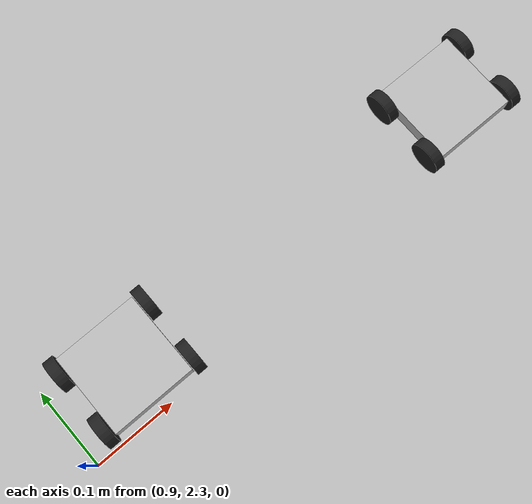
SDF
<sdf version="1.7">
 <world name="grid3">
  <model name="stage2">
   <link name="ridges">
    <pose>0 0 0 0 0 -1.57</pose>
    <inertial>
     <mass>10</mass>
     <inertia><ixx>0.83</ixx><ixy>-0</ixy><ixz>-0</ixz><iyy>0.83</iyy><iyz>-0</iyz><izz>0.83</izz></inertia>
    </inertial>
    <collision name="stage">
     <geometry><box><size>4.8768 4.8768 0.1</size></box></geometry>
     <surface><friction><ode><mu>1</mu><mu2>1</mu2></ode></friction></surface>
    </collision>
    <visual name="stage">
     <geometry><box><size>4.8768 4.8768 0.1</size></box></geometry>
     <material>
      <script>
       <uri>model://planeStage2/materials/scripts/</uri>
       <uri>model://planeStage2/materials/textures/</uri>
       <name>planeStage2/Image</name>
      </script>
     </material>
    </visual>
   </link>
   <static>1</static>
   <pose>1.2192 1.2192 -0.045 0 -0 1.5708</pose>
  </model>
  <model name="myrobot3">
   <link name="chassis3">
    <inertial>
     <pose>0 0 0.1 0 -0 0</pose>
     <mass>10</mass>
     <inertia><ixx>0.5</ixx><ixy>0</ixy><ixz>0</ixz><iyy>1</iyy><iyz>0</iyz><izz>0.1</izz></inertia>
    </inertial>
    <collision name="chassis3_fixed_joint_lump__collision_collision">
     <geometry><box><size>0.1016 0.1016 0.02</size></box></geometry>
    </collision>
    <visual name="chassis3_visual_visual">
     <geometry><box><size>0.1016 0.1016 0.02</size></box></geometry>
     <material>
      <script><name>robot3/Image</name><uri>file://media/materials/scripts/gazebo.material</uri></script>
     </material>
    </visual>
   </link>
   <joint name="left_back_wheel_hinge" type="revolute">
    <pose relative_to="chassis3">-0.0381 0.0584 0 0 -0 0</pose>
    <parent>chassis3</parent>
    <child>left_back_wheel</child>
    <axis>
     <xyz>0 1 0</xyz>
     <limit><lower>-1e+16</lower><upper>1e+16</upper></limit>
     <dynamics><spring_reference>0</spring_reference><spring_stiffness>0</spring_stiffness></dynamics>
    </axis>
   </joint>
   <link name="left_back_wheel">
    <pose relative_to="left_back_wheel_hinge">0 0 0 0 -0 0</pose>
    <inertial>
     <pose>0 0 0 -0 1.5707 1.5707</pose>
     <mass>5</mass>
     <inertia><ixx>1</ixx><ixy>0</ixy><ixz>0</ixz><iyy>1</iyy><iyz>0</iyz><izz>1</izz></inertia>
    </inertial>
    <collision name="left_back_wheel_fixed_joint_lump__collision_collision">
     <pose>0 0 0 1.57089 1.57079 -3.14159</pose>
     <geometry><cylinder><length>0.0127</length><radius>0.02</radius></cylinder></geometry>
    </collision>
    <visual name="left_back_wheel_visual_visual">
     <pose>0 0 0 1.57089 1.57079 -3.14159</pose>
     <geometry><cylinder><length>0.0127</length><radius>0.02</radius></cylinder></geometry>
     <material>
      <script><name>Gazebo/Black</name><uri>file://media/materials/scripts/gazebo.material</uri></script>
     </material>
    </visual>
   </link>
   <joint name="left_front_wheel_hinge" type="revolute">
    <pose relative_to="chassis3">0.0381 0.0584 0 0 -0 0</pose>
    <parent>chassis3</parent>
    <child>left_front_wheel</child>
    <axis>
     <xyz>0 1 0</xyz>
     <limit><lower>-1e+16</lower><upper>1e+16</upper></limit>
     <dynamics><spring_reference>0</spring_reference><spring_stiffness>0</spring_stiffness></dynamics>
    </axis>
   </joint>
   <link name="left_front_wheel">
    <pose relative_to="left_front_wheel_hinge">0 0 0 0 -0 0</pose>
    <inertial>
     <pose>0 0 0 -0 1.5707 1.5707</pose>
     <mass>5</mass>
     <inertia><ixx>1</ixx><ixy>0</ixy><ixz>0</ixz><iyy>1</iyy><iyz>0</iyz><izz>1</izz></inertia>
    </inertial>
    <collision name="left_front_wheel_fixed_joint_lump__collision_collision">
     <pose>0 0 0 1.57089 1.57079 -3.14159</pose>
     <geometry><cylinder><length>0.0127</length><radius>0.02</radius></cylinder></geometry>
    </collision>
    <visual name="left_front_wheel_visual_visual">
     <pose>0 0 0 1.57089 1.57079 -3.14159</pose>
     <geometry><cylinder><length>0.0127</length><radius>0.02</radius></cylinder></geometry>
     <material>
      <script><name>Gazebo/Black</name><uri>file://media/materials/scripts/gazebo.material</uri></script>
     </material>
    </visual>
   </link>
   <joint name="right_back_wheel_hinge" type="revolute">
    <pose relative_to="chassis3">-0.0381 -0.0584 0 0 -0 0</pose>
    <parent>chassis3</parent>
    <child>right_back_wheel</child>
    <axis>
     <xyz>0 1 0</xyz>
     <limit><lower>-1e+16</lower><upper>1e+16</upper></limit>
     <dynamics><spring_reference>0</spring_reference><spring_stiffness>0</spring_stiffness></dynamics>
    </axis>
   </joint>
   <link name="right_back_wheel">
    <pose relative_to="right_back_wheel_hinge">0 0 0 0 -0 0</pose>
    <inertial>
     <pose>0 0 0 -0 1.5707 1.5707</pose>
     <mass>5</mass>
     <inertia><ixx>1</ixx><ixy>0</ixy><ixz>0</ixz><iyy>1</iyy><iyz>0</iyz><izz>1</izz></inertia>
    </inertial>
    <collision name="right_back_wheel_fixed_joint_lump__collision_collision">
     <pose>0 0 0 1.57089 1.57079 -3.14159</pose>
     <geometry><cylinder><length>0.0127</length><radius>0.02</radius></cylinder></geometry>
    </collision>
    <visual name="right_back_wheel_visual_visual">
     <pose>0 0 0 1.57089 1.57079 -3.14159</pose>
     <geometry><cylinder><length>0.0127</length><radius>0.02</radius></cylinder></geometry>
     <material>
      <script><name>Gazebo/Black</name><uri>file://media/materials/scripts/gazebo.material</uri></script>
     </material>
    </visual>
   </link>
   <joint name="right_front_wheel_hinge" type="revolute">
    <pose relative_to="chassis3">0.0381 -0.0584 0 0 -0 0</pose>
    <parent>chassis3</parent>
    <child>right_front_wheel</child>
    <axis>
     <xyz>0 1 0</xyz>
     <limit><lower>-1e+16</lower><upper>1e+16</upper></limit>
     <dynamics><spring_reference>0</spring_reference><spring_stiffness>0</spring_stiffness></dynamics>
    </axis>
   </joint>
   <link name="right_front_wheel">
    <pose relative_to="right_front_wheel_hinge">0 0 0 0 -0 0</pose>
    <inertial>
     <pose>0 0 0 -0 1.5707 1.5707</pose>
     <mass>5</mass>
     <inertia><ixx>1</ixx><ixy>0</ixy><ixz>0</ixz><iyy>1</iyy><iyz>0</iyz><izz>1</izz></inertia>
    </inertial>
    <collision name="right_front_wheel_fixed_joint_lump__collision_collision">
     <pose>0 0 0 1.57089 1.57079 -3.14159</pose>
     <geometry><cylinder><length>0.0127</length><radius>0.02</radius></cylinder></geometry>
    </collision>
    <visual name="right_front_wheel_visual_visual">
     <pose>0 0 0 1.57089 1.57079 -3.14159</pose>
     <geometry><cylinder><length>0.0127</length><radius>0.02</radius></cylinder></geometry>
     <material>
      <script><name>Gazebo/Black</name><uri>file://media/materials/scripts/gazebo.material</uri></script>
     </material>
    </visual>
   </link>
   <static>0</static>
   <plugin name="differential_drive_controller" filename="libgazebo_ros_diff_drive.so">
    <legacyMode>0</legacyMode>
    <alwaysOn>1</alwaysOn>
    <updateRate>20</updateRate>
    <leftJoint>left_back_wheel_hinge</leftJoint>
    <rightJoint>right_back_wheel_hinge</rightJoint>
    <wheelSeparation>0.4</wheelSeparation>
    <wheelDiameter>0.1</wheelDiameter>
    <wheelTorque>5</wheelTorque>
    <commandTopic>robot3/cmd_vel</commandTopic>
    <odometryTopic>robot3/odom</odometryTopic>
    <odometryFrame>grid/odom</odometryFrame>
    <robotBaseFrame>chassis3</robotBaseFrame>
    <robotNamespace>/</robotNamespace>
   </plugin>
   <pose>0.988931 2.35932 0.025 -2e-06 -5e-06 -1.57339</pose>
  </model>
  <model name="myrobot2">
   <link name="chassis2">
    <inertial>
     <pose>0 0 0.1 0 -0 0</pose>
     <mass>10</mass>
     <inertia><ixx>0.5</ixx><ixy>0</ixy><ixz>0</ixz><iyy>1</iyy><iyz>0</iyz><izz>0.1</izz></inertia>
    </inertial>
    <collision name="chassis2_fixed_joint_lump__collision_collision">
     <geometry><box><size>0.1016 0.1016 0.02</size></box></geometry>
    </collision>
    <visual name="chassis2_visual_visual">
     <geometry><box><size>0.1016 0.1016 0.02</size></box></geometry>
     <material>
      <script><name>robot2/Image</name><uri>file://media/materials/scripts/gazebo.material</uri></script>
     </material>
    </visual>
   </link>
   <joint name="left_back_wheel_hinge" type="revolute">
    <pose relative_to="chassis2">-0.0381 0.0584 0 0 -0 0</pose>
    <parent>chassis2</parent>
    <child>left_back_wheel</child>
    <axis>
     <xyz>0 1 0</xyz>
     <limit><lower>-1e+16</lower><upper>1e+16</upper></limit>
     <dynamics><spring_reference>0</spring_reference><spring_stiffness>0</spring_stiffness></dynamics>
    </axis>
   </joint>
   <link name="left_back_wheel">
    <pose relative_to="left_back_wheel_hinge">0 0 0 0 -0 0</pose>
    <inertial>
     <pose>0 0 0 -0 1.5707 1.5707</pose>
     <mass>10</mass>
     <inertia><ixx>1</ixx><ixy>0</ixy><ixz>0</ixz><iyy>1</iyy><iyz>0</iyz><izz>1</izz></inertia>
    </inertial>
    <collision name="left_back_wheel_fixed_joint_lump__collision_collision">
     <pose>0 0 0 1.57089 1.57079 -3.14159</pose>
     <geometry><cylinder><length>0.0127</length><radius>0.02</radius></cylinder></geometry>
    </collision>
    <visual name="left_back_wheel_visual_visual">
     <pose>0 0 0 1.57089 1.57079 -3.14159</pose>
     <geometry><cylinder><length>0.0127</length><radius>0.02</radius></cylinder></geometry>
     <material>
      <script><name>Gazebo/Black</name><uri>file://media/materials/scripts/gazebo.material</uri></script>
     </material>
    </visual>
   </link>
   <joint name="left_front_wheel_hinge" type="revolute">
    <pose relative_to="chassis2">0.0381 0.0584 0 0 -0 0</pose>
    <parent>chassis2</parent>
    <child>left_front_wheel</child>
    <axis>
     <xyz>0 1 0</xyz>
     <limit><lower>-1e+16</lower><upper>1e+16</upper></limit>
     <dynamics><spring_reference>0</spring_reference><spring_stiffness>0</spring_stiffness></dynamics>
    </axis>
   </joint>
   <link name="left_front_wheel">
    <pose relative_to="left_front_wheel_hinge">0 0 0 0 -0 0</pose>
    <inertial>
     <pose>0 0 0 -0 1.5707 1.5707</pose>
     <mass>10</mass>
     <inertia><ixx>1</ixx><ixy>0</ixy><ixz>0</ixz><iyy>1</iyy><iyz>0</iyz><izz>1</izz></inertia>
    </inertial>
    <collision name="left_front_wheel_fixed_joint_lump__collision_collision">
     <pose>0 0 0 1.57089 1.57079 -3.14159</pose>
     <geometry><cylinder><length>0.0127</length><radius>0.02</radius></cylinder></geometry>
    </collision>
    <visual name="left_front_wheel_visual_visual">
     <pose>0 0 0 1.57089 1.57079 -3.14159</pose>
     <geometry><cylinder><length>0.0127</length><radius>0.02</radius></cylinder></geometry>
     <material>
      <script><name>Gazebo/Black</name><uri>file://media/materials/scripts/gazebo.material</uri></script>
     </material>
    </visual>
   </link>
   <joint name="right_back_wheel_hinge" type="revolute">
    <pose relative_to="chassis2">-0.0381 -0.0584 0 0 -0 0</pose>
    <parent>chassis2</parent>
    <child>right_back_wheel</child>
    <axis>
     <xyz>0 1 0</xyz>
     <limit><lower>-1e+16</lower><upper>1e+16</upper></limit>
     <dynamics><spring_reference>0</spring_reference><spring_stiffness>0</spring_stiffness></dynamics>
    </axis>
   </joint>
   <link name="right_back_wheel">
    <pose relative_to="right_back_wheel_hinge">0 0 0 0 -0 0</pose>
    <inertial>
     <pose>0 0 0 -0 1.5707 1.5707</pose>
     <mass>10</mass>
     <inertia><ixx>1</ixx><ixy>0</ixy><ixz>0</ixz><iyy>1</iyy><iyz>0</iyz><izz>1</izz></inertia>
    </inertial>
    <collision name="right_back_wheel_fixed_joint_lump__collision_collision">
     <pose>0 0 0 1.57089 1.57079 -3.14159</pose>
     <geometry><cylinder><length>0.0127</length><radius>0.02</radius></cylinder></geometry>
    </collision>
    <visual name="right_back_wheel_visual_visual">
     <pose>0 0 0 1.57089 1.57079 -3.14159</pose>
     <geometry><cylinder><length>0.0127</length><radius>0.02</radius></cylinder></geometry>
     <material>
      <script><name>Gazebo/Black</name><uri>file://media/materials/scripts/gazebo.material</uri></script>
     </material>
    </visual>
   </link>
   <joint name="right_front_wheel_hinge" type="revolute">
    <pose relative_to="chassis2">0.0381 -0.0584 0 0 -0 0</pose>
    <parent>chassis2</parent>
    <child>right_front_wheel</child>
    <axis>
     <xyz>0 1 0</xyz>
     <limit><lower>-1e+16</lower><upper>1e+16</upper></limit>
     <dynamics><spring_reference>0</spring_reference><spring_stiffness>0</spring_stiffness></dynamics>
    </axis>
   </joint>
   <link name="right_front_wheel">
    <pose relative_to="right_front_wheel_hinge">0 0 0 0 -0 0</pose>
    <inertial>
     <pose>0 0 0 -0 1.5707 1.5707</pose>
     <mass>10</mass>
     <inertia><ixx>1</ixx><ixy>0</ixy><ixz>0</ixz><iyy>1</iyy><iyz>0</iyz><izz>1</izz></inertia>
    </inertial>
    <collision name="right_front_wheel_fixed_joint_lump__collision_collision">
     <pose>0 0 0 1.57089 1.57079 -3.14159</pose>
     <geometry><cylinder><length>0.0127</length><radius>0.02</radius></cylinder></geometry>
    </collision>
    <visual name="right_front_wheel_visual_visual">
     <pose>0 0 0 1.57089 1.57079 -3.14159</pose>
     <geometry><cylinder><length>0.0127</length><radius>0.02</radius></cylinder></geometry>
     <material>
      <script><name>Gazebo/Black</name><uri>file://media/materials/scripts/gazebo.material</uri></script>
     </material>
    </visual>
   </link>
   <static>0</static>
   <plugin name="differential_drive_controller" filename="libgazebo_ros_diff_drive.so">
    <legacyMode>0</legacyMode>
    <alwaysOn>1</alwaysOn>
    <updateRate>20</updateRate>
    <leftJoint>left_back_wheel_hinge</leftJoint>
    <rightJoint>right_back_wheel_hinge</rightJoint>
    <wheelSeparation>0.1608</wheelSeparation>
    <wheelDiameter>0.1</wheelDiameter>
    <wheelTorque>5</wheelTorque>
    <commandTopic>robot2/cmd_vel</commandTopic>
    <odometryTopic>robot2/odom</odometryTopic>
    <odometryFrame>grid/odom</odometryFrame>
    <robotBaseFrame>chassis2</robotBaseFrame>
    <robotNamespace>/</robotNamespace>
   </plugin>
   <pose>1.44964 2.35803 0.025 -1e-06 -1e-06 -1.58048</pose>
  </model>
 </world>
</sdf>
